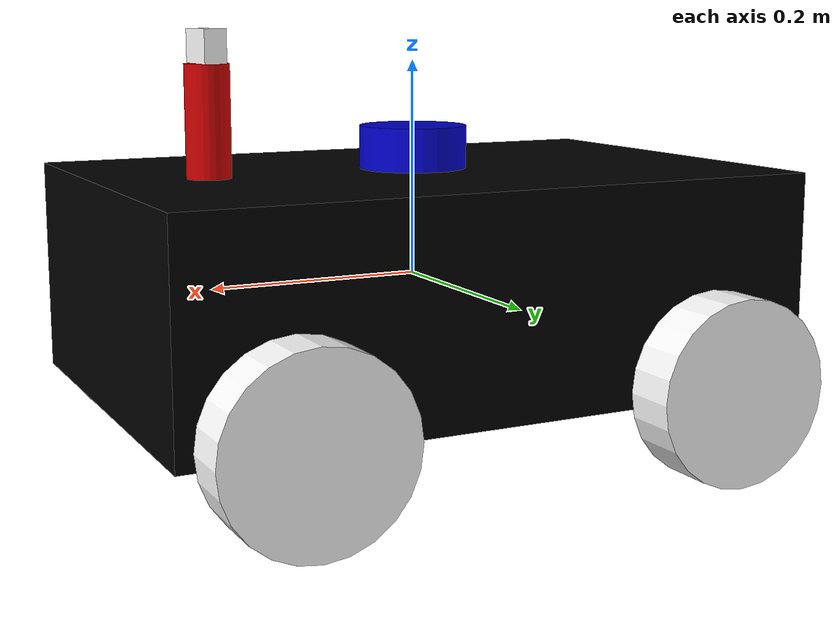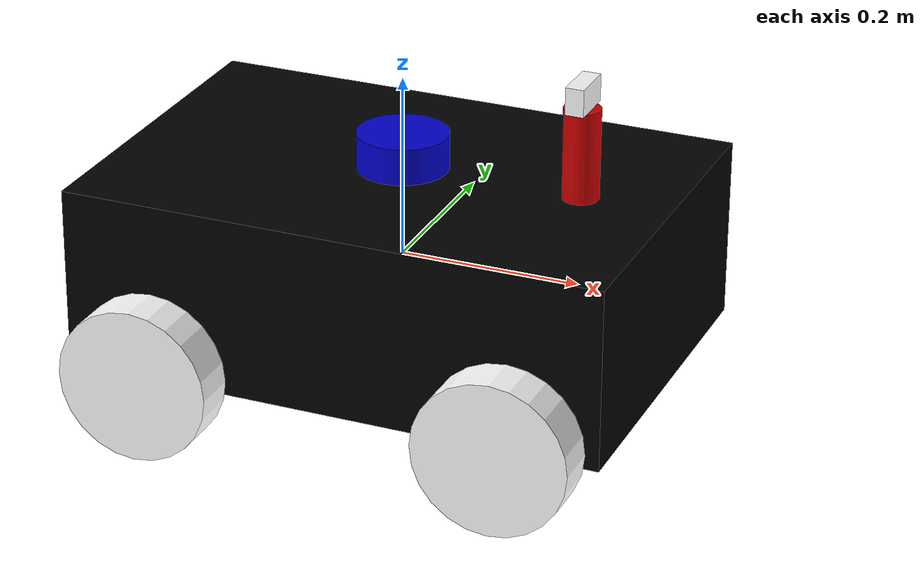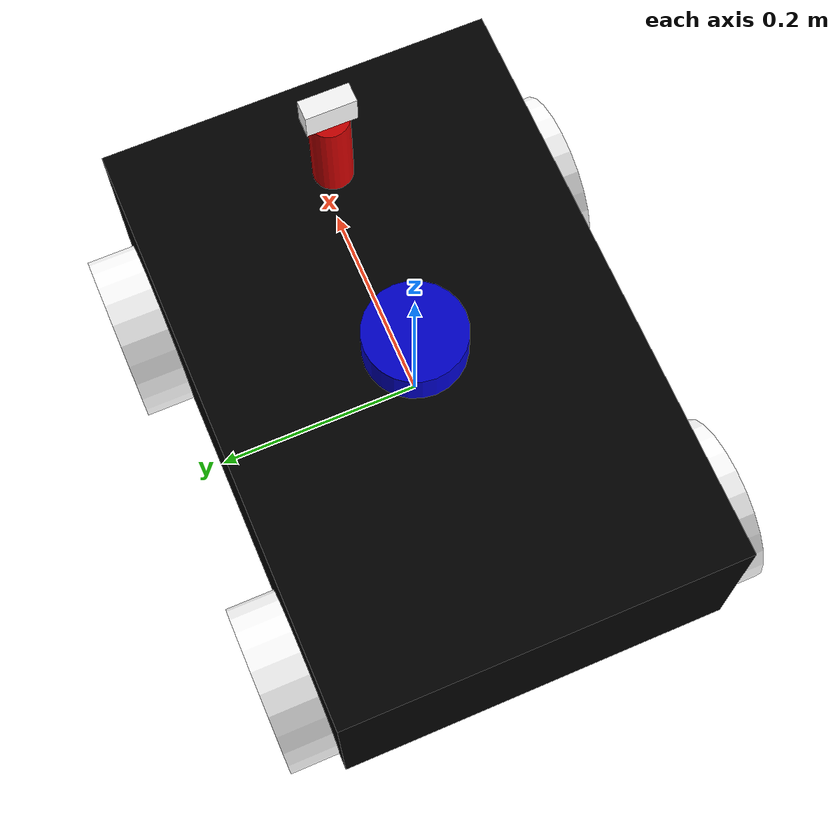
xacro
<?xml version="1.0"?>
<robot xmlns:xacro="http://www.ros.org/wiki/xacro" name="my_robot">

    <material name="blue"><color rgba="0 0 0.8 1"/></material>
    <material name="black"><color rgba="0 0 0 1"/></material>
    <material name="white"><color rgba="1 1 1 1"/></material>
    <material name="red"><color rgba="0.8 0 0 1"/></material>

    <xacro:property name="wheel_radius" value="0.085"/>
    <xacro:macro name="rectangle_inertia" params="m x y z">
        <inertial>
            <mass value="${m}"/>
            <inertia ixx="${(m/12) * (y*y + z*z)}" ixy="0.0" ixz="0.0"
                     iyy="${(m/12) * (x*x + z*z)}" iyz="0.0"
                     izz="${(m/12) * (x*x + y*y)}"/>
        </inertial>
    </xacro:macro>

    <xacro:macro name="cylinder_inertia" params="m r h">
        <inertial>
            <mass value="${m}"/>
            <inertia ixx="${(m/12) * (3*r*r + h*h)}" ixy="0.0" ixz="0.0"
                     iyy="${(m/12) * (3*r*r + h*h)}" iyz="0.0"
                     izz="${(m/2) * (r*r)}"/>
        </inertial>
    </xacro:macro>

    <link name="base_link"></link>

    <joint name="chassis_joint" type="fixed">
        <parent link="base_link"/>
        <child link="chassis"/>
        <origin xyz="0 0 0"/>
    </joint>

    <link name="chassis">
        <visual>
            <geometry><box size="0.6 0.4 0.2"/></geometry>
            <material name="black"/>
        </visual>
        <collision>
            <geometry><box size="0.6 0.4 0.2"/></geometry>
        </collision>
        <xacro:rectangle_inertia m="5.0" x="0.6" y="0.4" z="0.2"/>
    </link>

    <xacro:macro name="wheel" params="name x_off y_off">
        <joint name="${name}_wheel_joint" type="continuous">
            <parent link="chassis"/>
            <child link="${name}_wheel"/>
            <origin xyz="${x_off} ${y_off} -0.085" rpy="-${pi/2} 0 0"/>
            <axis xyz="0 0 1"/>
        </joint>

       <link name="${name}_wheel">
            <visual>
                <geometry><cylinder radius="${wheel_radius}" length="0.05"/></geometry>
                <material name="white"/>
            </visual>
            <collision>
                <geometry><cylinder radius="${wheel_radius}" length="0.05"/></geometry>
            </collision>
            <xacro:cylinder_inertia m="0.75" r="${wheel_radius}" h="0.05"/>
        </link>
    </xacro:macro>

    <xacro:wheel name="front_left" x_off="0.2" y_off="0.225" />
    <xacro:wheel name="front_right" x_off="0.2" y_off="-0.225" />
    <xacro:wheel name="back_left" x_off="-0.2" y_off="0.225" />
    <xacro:wheel name="back_right" x_off="-0.2" y_off="-0.225" />

    <joint name="arm_joint" type="revolute">
        <parent link="chassis"/>
        <child link="arm"/>
        <origin xyz="0.2 0 0.1" rpy="0 0 0"/>
        <axis xyz="0 1 0"/>
        <limit lower="-1.57" upper="1.57" effort="100" velocity="1.0"/>
    </joint>

    <link name="arm">
        <visual>
            <origin xyz="0 0 0.05" rpy="0 0 0"/>
            <geometry><cylinder radius="0.02" length="0.1"/></geometry>
            <material name="red"/>
        </visual>
        <collision>
            <origin xyz="0 0 0.05" rpy="0 0 0"/>
            <geometry><cylinder radius="0.02" length="0.1"/></geometry>
        </collision>
        <xacro:cylinder_inertia m="0.2" r="0.02" h="0.1"/>
    </link>

    <joint name="camera_joint" type="fixed">
        <parent link="arm"/>
        <child link="camera"/>
        <origin xyz="0 0 0.1" rpy="0 0 0"/>
    </joint>

    <link name="camera">
        <visual>
            <origin xyz="0 0 0.015" rpy="0 0 0"/>
            <geometry><box size="0.02 0.05 0.03"/></geometry>
            <material name="white"/>
        </visual>
        <collision>
            <origin xyz="0 0 0.015" rpy="0 0 0"/>
            <geometry><box size="0.02 0.05 0.03"/></geometry>
        </collision>
        <xacro:rectangle_inertia m="0.1" x="0.02" y="0.05" z="0.03"/>
    </link>

    <joint name="camera_central_joint" type="fixed">
        <parent link="camera"/>
        <child link="camera_link"/>
        <origin xyz="0 0 0" rpy="-1.5708 0 -1.5708"/>
    </joint>

    <link name="camera_link"></link>

    <joint name="lidar_joint" type="fixed">
        <parent link="chassis"/>
        <child link="lidar_link"/>
        <origin xyz="0 0 0.12" rpy="0 0 0"/>
    </joint>

    <link name="lidar_link">
        <visual>
            <geometry><cylinder radius="0.05" length="0.04"/></geometry>
            <material name="blue"/>
        </visual>
        <collision>
            <geometry><cylinder radius="0.05" length="0.04"/></geometry>
        </collision>
        <xacro:cylinder_inertia m="0.2" r="0.05" h="0.04"/>
    </link>

    <gazebo>
        <plugin filename="ignition-gazebo-sensors-system" name="ignition::gazebo::systems::Sensors">
            <render_engine>ogre2</render_engine>
        </plugin>
    </gazebo>

    <gazebo reference="chassis">
        <sensor name="imu_sensor" type="imu">
            <always_on>1</always_on>
            <update_rate>100</update_rate>
            <visualize>true</visualize>
            <topic>imu</topic>
        </sensor>
    </gazebo>

    <gazebo reference="lidar_link">
        <sensor name="lidar" type="gpu_lidar">
            <always_on>true</always_on>
            <visualize>true</visualize>
            <update_rate>10</update_rate>
            <topic>scan</topic>
            <ignition_frame_id>lidar_link</ignition_frame_id>
            <ray>
                <scan>
                    <horizontal>
                        <samples>360</samples>
                        <resolution>1.0</resolution>
                        <min_angle>-3.14159</min_angle>
                        <max_angle>3.14159</max_angle>
                    </horizontal>
                </scan>
                <range>
                    <min>0.15</min>
                    <max>10.0</max>
                </range>
            </ray>
        </sensor>
    </gazebo>

    <gazebo reference="camera">
        <sensor name="standard_camera" type="camera">
            <always_on>true</always_on>
            <visualize>true</visualize>
            <update_rate>10</update_rate>
            <topic>camera</topic>
            <ignition_frame_id>camera_link</ignition_frame_id>
            <camera>
                <horizontal_fov>1.089</horizontal_fov>
                <image>
                    <width>640</width>
                    <height>480</height>
                    <format>R8G8B8</format>
                </image>
                <clip>
                    <near>0.05</near>
                    <far>10.0</far>
                </clip>
            </camera>
        </sensor>
    </gazebo>

    <ros2_control name="GazeboSystem" type="system">
        <hardware>
            <plugin>ign_ros2_control/IgnitionSystem</plugin>
        </hardware>

        <joint name="arm_joint">
            <command_interface name="position"/>
            <state_interface name="position"/>
            <state_interface name="velocity"/>
        </joint>

        <joint name="front_left_wheel_joint">
            <command_interface name="velocity"/> <!-- CHANGED -->
            <state_interface name="position"/>
            <state_interface name="velocity"/>
        </joint>

        <joint name="front_right_wheel_joint">
            <command_interface name="velocity"/> <!-- CHANGED -->
            <state_interface name="position"/>
            <state_interface name="velocity"/>
        </joint>

        <joint name="back_left_wheel_joint">
            <command_interface name="velocity"/> <!-- CHANGED -->
            <state_interface name="position"/>
            <state_interface name="velocity"/>
        </joint>

        <joint name="back_right_wheel_joint">
            <command_interface name="velocity"/> <!-- CHANGED -->
            <state_interface name="position"/>
            <state_interface name="velocity"/>
        </joint>
    </ros2_control>

    <gazebo>
        <plugin filename="ign_ros2_control-system" name="ign_ros2_control::IgnitionROS2ControlPlugin">
            <parameters>$(find robotsim)/config/control.yaml</parameters>
        </plugin>
    </gazebo>
</robot>
